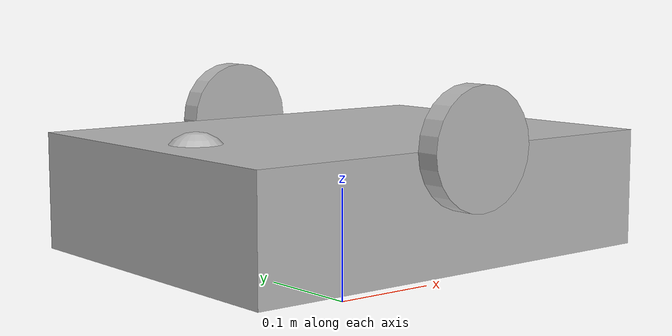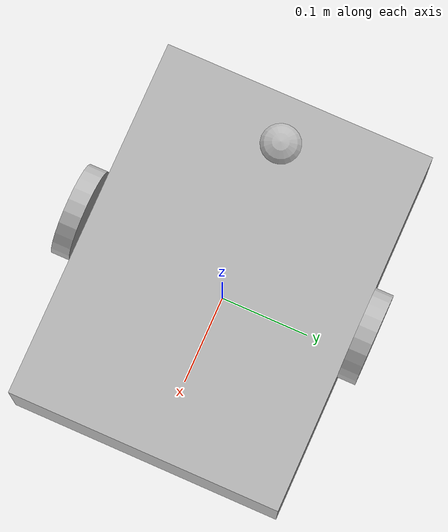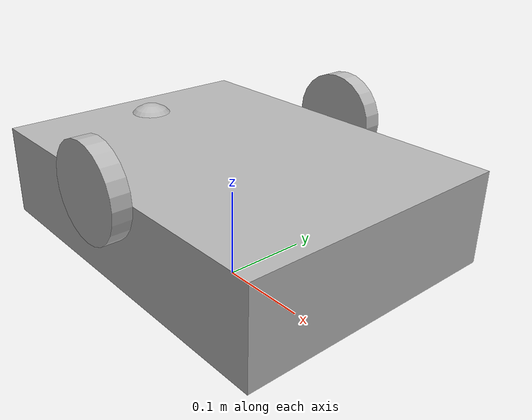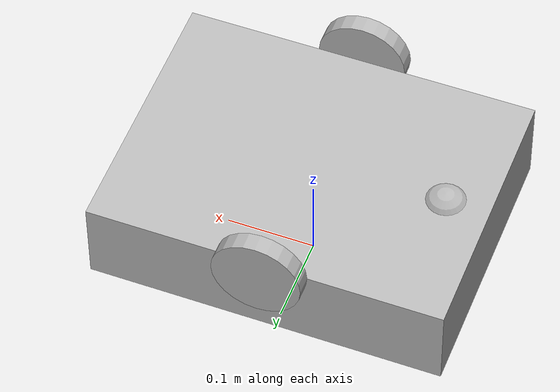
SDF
<?xml version="1.0"?>
<sdf version="1.9">
  <model name="mobile_bot">
    <static>false</static>
    <pose>0 0 0.1 0 0 0</pose>

    <!-- Base -->
    <link name="base_link">
      <inertial>
        <mass>8.0</mass>
        <inertia>
          <ixx>0.2</ixx><iyy>0.2</iyy><izz>0.2</izz>
        </inertia>
      </inertial>

      <collision name="base_collision">
        <geometry>
          <box><size>0.4 0.3 0.1</size></box>
        </geometry>
      </collision>

      <visual name="base_visual">
        <geometry>
          <box><size>0.4 0.3 0.1</size></box>
        </geometry>
      </visual>
    </link>

    <!-- Left wheel (cylinder axis aligned with Y by rolling 90deg about X) -->
    <link name="left_wheel">
      <pose>0 0.16 0.05 1.5708 0 0</pose>
      <inertial>
        <mass>0.5</mass>
        <inertia>
          <ixx>0.001</ixx><iyy>0.001</iyy><izz>0.001</izz>
        </inertia>
      </inertial>

      <collision name="collision">
        <geometry>
          <cylinder><radius>0.05</radius><length>0.02</length></cylinder>
        </geometry>
        <surface>
          <friction>
            <ode>
              <mu>2.0</mu><mu2>2.0</mu2>
            </ode>
          </friction>
        </surface>
      </collision>

      <visual name="visual">
        <geometry>
          <cylinder><radius>0.05</radius><length>0.02</length></cylinder>
        </geometry>
      </visual>
    </link>

    <!-- Right wheel -->
    <link name="right_wheel">
      <pose>0 -0.16 0.05 1.5708 0 0</pose>
      <inertial>
        <mass>0.5</mass>
        <inertia>
          <ixx>0.001</ixx><iyy>0.001</iyy><izz>0.001</izz>
        </inertia>
      </inertial>

      <collision name="collision">
        <geometry>
          <cylinder><radius>0.05</radius><length>0.02</length></cylinder>
        </geometry>
        <surface>
          <friction>
            <ode>
              <mu>2.0</mu><mu2>2.0</mu2>
            </ode>
          </friction>
        </surface>
      </collision>

      <visual name="visual">
        <geometry>
          <cylinder><radius>0.05</radius><length>0.02</length></cylinder>
        </geometry>
      </visual>
    </link>

    <!-- Caster wheel (ball) -->
    <link name="caster">
      <pose>-0.15 0 0.03 0 0 0</pose>
      <collision name="collision">
        <geometry>
          <sphere><radius>0.03</radius></sphere>
        </geometry>
        <surface>
          <friction>
            <ode>
              <mu>0.3</mu><mu2>0.3</mu2>
            </ode>
          </friction>
        </surface>
      </collision>
      <visual name="visual">
        <geometry>
          <sphere><radius>0.03</radius></sphere>
        </geometry>
      </visual>
    </link>

    <!-- Joints -->
    <joint name="left_wheel_joint" type="revolute">
      <parent>base_link</parent>
      <child>left_wheel</child>
      <axis>
        <xyz>0 1 0</xyz>
        <limit><lower>-1e16</lower><upper>1e16</upper></limit>
      </axis>
    </joint>

    <joint name="right_wheel_joint" type="revolute">
      <parent>base_link</parent>
      <child>right_wheel</child>
      <axis>
        <xyz>0 1 0</xyz>
        <limit><lower>-1e16</lower><upper>1e16</upper></limit>
      </axis>
    </joint>

    <joint name="caster_joint" type="ball">
      <parent>base_link</parent>
      <child>caster</child>
    </joint>

    <!-- DiffDrive -->
    <plugin filename="gz-sim-diff-drive-system" name="gz::sim::systems::DiffDrive">
      <left_joint>left_wheel_joint</left_joint>
      <right_joint>right_wheel_joint</right_joint>
      <wheel_separation>0.32</wheel_separation>
      <wheel_radius>0.05</wheel_radius>
      <topic>/cmd_vel</topic>
      <odom_topic>odom</odom_topic>
      <frame_id>base_link</frame_id>
      <child_frame_id>odom</child_frame_id>
      <update_rate>50</update_rate>
    </plugin>

  </model>
</sdf>
